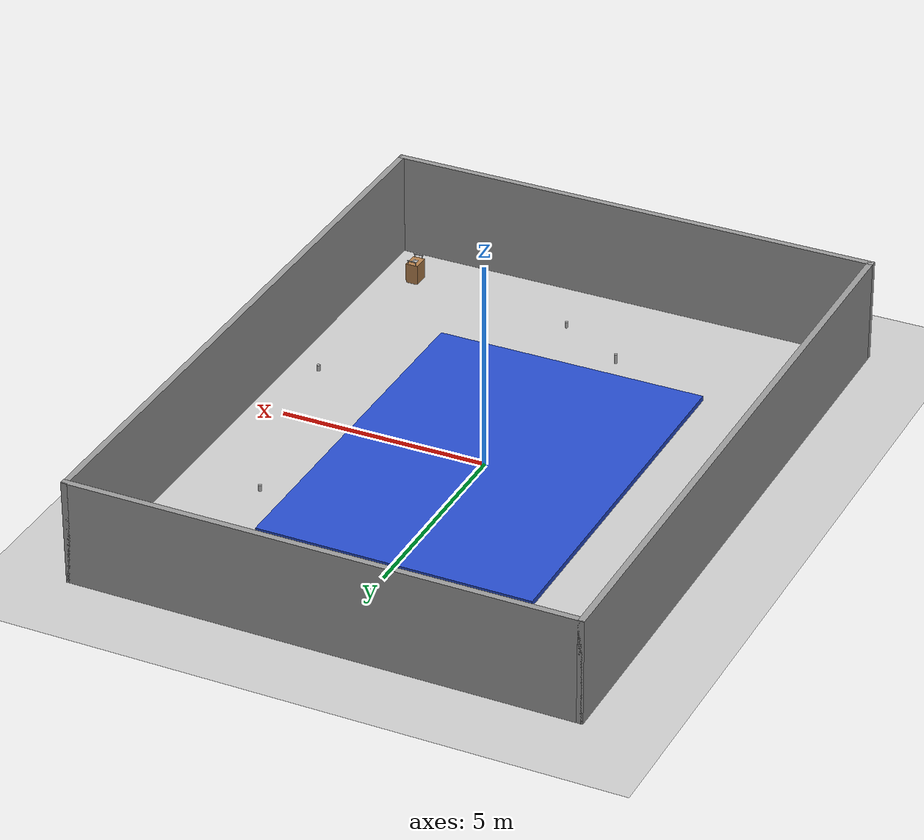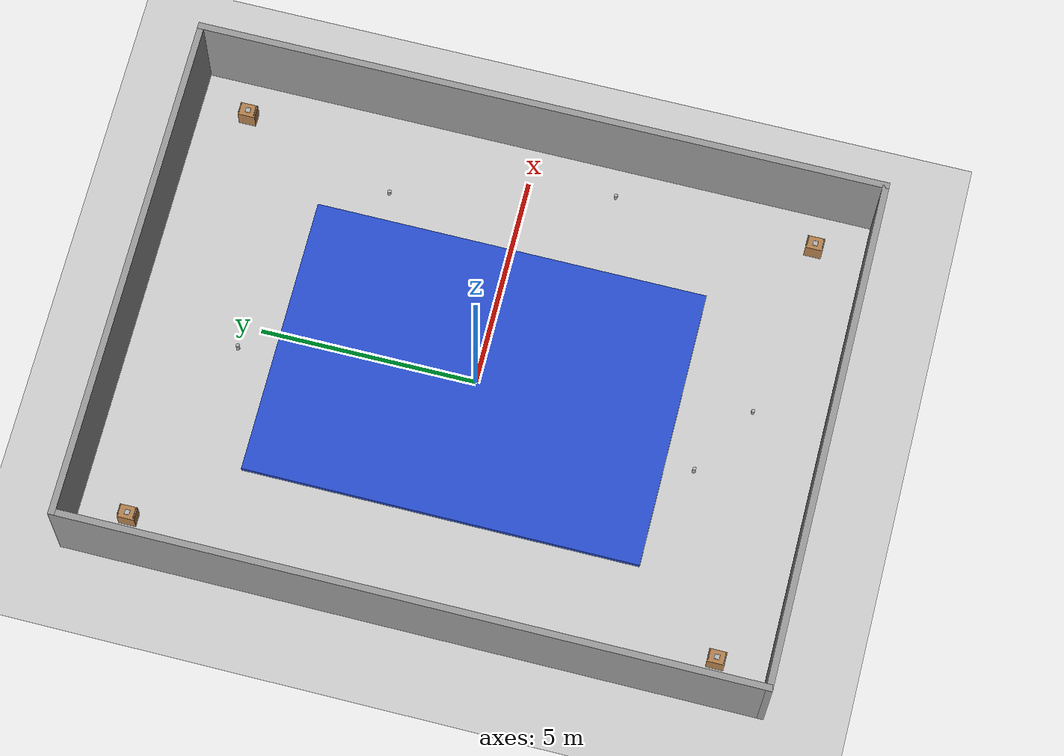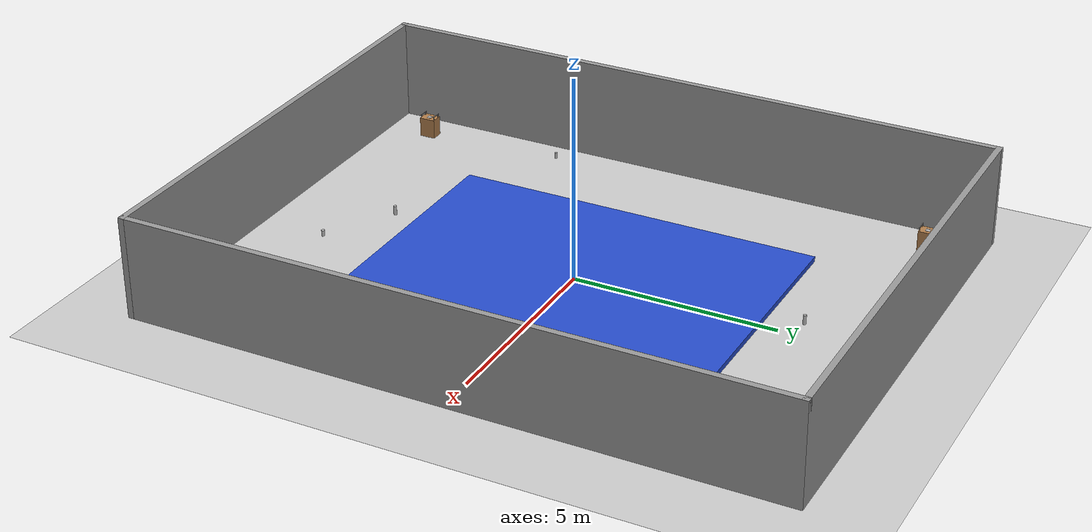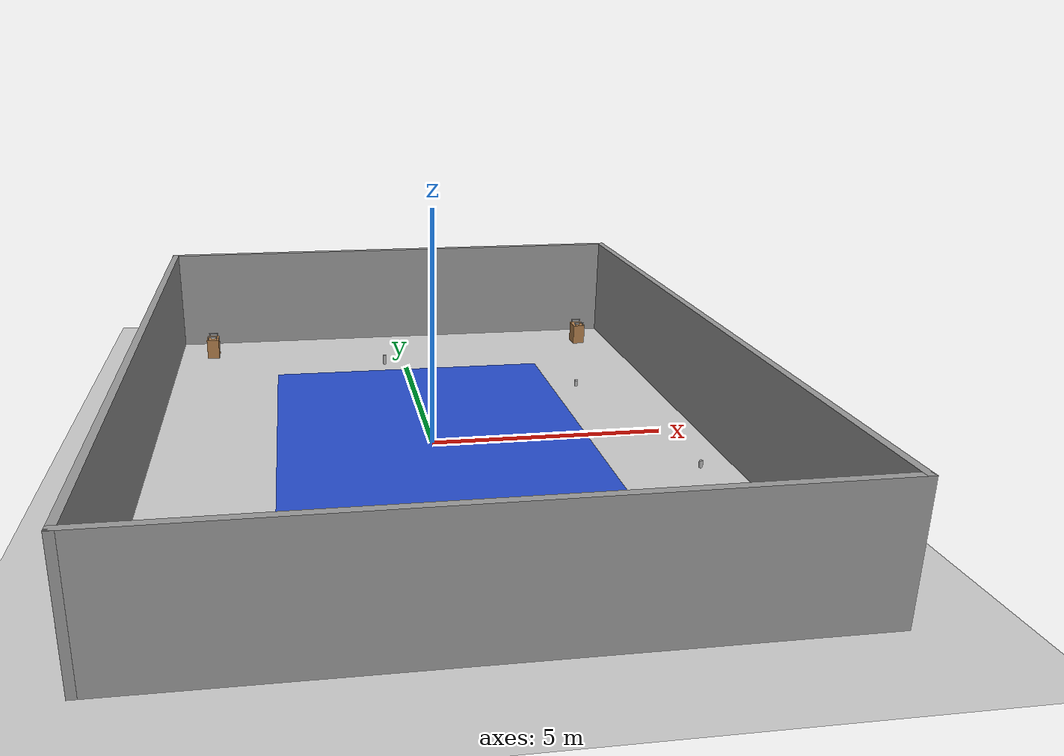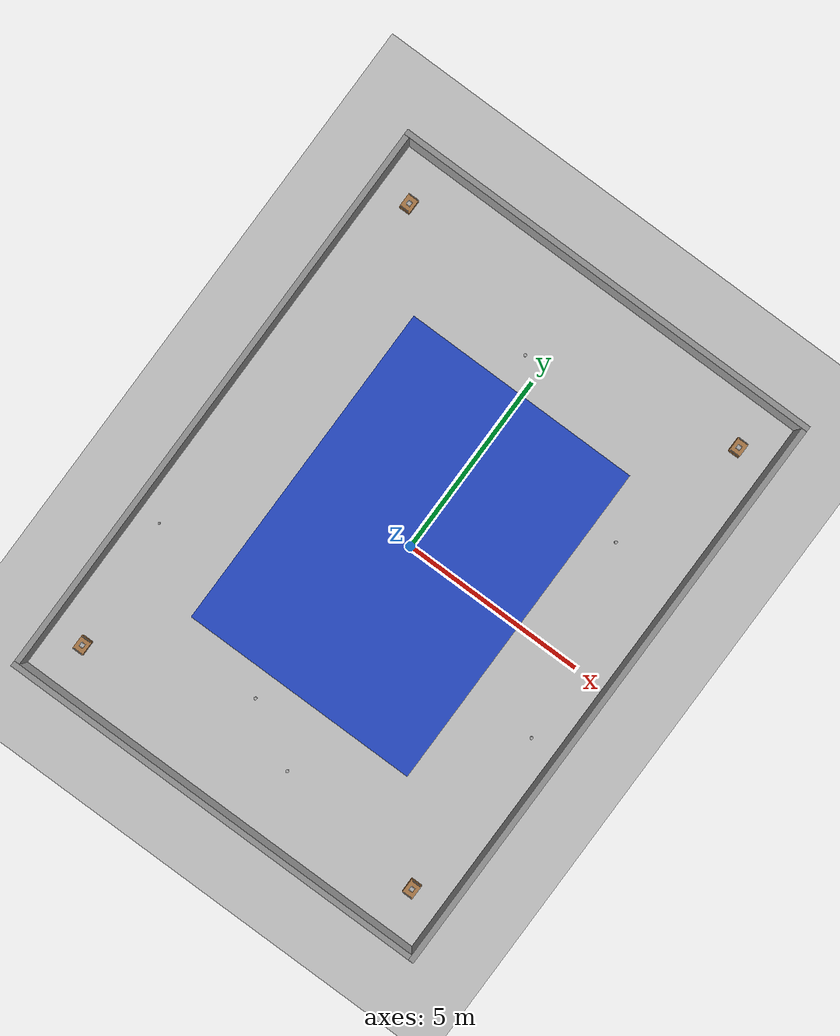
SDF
<sdf version="1.7">
 <world name="default">
  <plugin name="gazebo_ros_state" filename="libgazebo_ros_state.so">
   <ros><namespace>/gazebo</namespace></ros>
   <update_rate>10.0</update_rate>
  </plugin>
  <light name="sun" type="directional">
   <pose>0 0 10 0 -0 0</pose>
   <diffuse>0.8 0.8 0.8 1</diffuse>
   <specular>0.2 0.2 0.2 1</specular>
   <attenuation>
    <range>1000</range>
    <constant>0.9</constant>
    <linear>0.01</linear>
    <quadratic>0.001</quadratic>
   </attenuation>
   <direction>-0.5 0.1 -0.9</direction>
   <spot><inner_angle>0</inner_angle><outer_angle>0</outer_angle><falloff>0</falloff></spot>
  </light>
  <model name="ground_plane">
   <static>1</static>
   <link name="link">
    <collision name="collision">
     <geometry><plane><normal>0 0 1</normal><size>100 100</size></plane></geometry>
     <surface><friction><ode><mu>100</mu><mu2>50</mu2></ode></friction></surface>
    </collision>
    <visual name="visual">
     <cast_shadows>0</cast_shadows>
     <geometry><plane><normal>0 0 1</normal><size>100 100</size></plane></geometry>
     <material>
      <script><uri>file://media/materials/scripts/gazebo.material</uri><name>Gazebo/Grey</name></script>
     </material>
    </visual>
   </link>
  </model>
  <gravity>0 0 -9.8</gravity>
  <magnetic_field>6e-06 2.3e-05 -4.2e-05</magnetic_field>
  <atmosphere type="adiabatic"/>
  <physics type="ode">
   <max_step_size>0.001</max_step_size>
   <real_time_factor>1</real_time_factor>
   <real_time_update_rate>1000</real_time_update_rate>
  </physics>
  <scene><ambient>0.4 0.4 0.4 1</ambient><background>0.7 0.7 0.7 1</background><shadows>1</shadows></scene>
  <audio><device>default</device></audio>
  <spherical_coordinates>
   <surface_model>EARTH_WGS84</surface_model>
   <latitude_deg>0</latitude_deg>
   <longitude_deg>0</longitude_deg>
   <elevation>0</elevation>
   <heading_deg>0</heading_deg>
  </spherical_coordinates>
  <model name="pond">
   <link name="link">
    <inertial>
     <mass>1</mass>
     <inertia><ixx>0</ixx><ixy>0</ixy><ixz>0</ixz><iyy>0.166667</iyy><iyz>0</iyz><izz>0</izz></inertia>
    </inertial>
    <gravity>0</gravity>
    <visual name="visual">
     <geometry><box><size>6.57486 9.15662 0.999998</size></box></geometry>
     <material>
      <script><name>Gazebo/Blue</name><uri>file://media/materials/scripts/gazebo.material</uri></script>
      <shader type="pixel"><normal_map>__default__</normal_map></shader>
      <ambient>0 0 1 1</ambient>
      <diffuse>0 0 1 1</diffuse>
      <specular>0.01 0.01 0.01 1</specular>
      <emissive>0 0 0 1</emissive>
     </material>
    </visual>
    <collision name="collision">
     <geometry><box><size>6.70189 9.69168 0.999998</size></box></geometry>
     <surface>
      <friction>
       <ode><mu>1</mu><mu2>1</mu2><fdir1>0 0 0</fdir1><slip1>0</slip1><slip2>0</slip2></ode>
       <torsional>
        <coefficient>1</coefficient>
        <patch_radius>0</patch_radius>
        <surface_radius>0</surface_radius>
        <use_patch_radius>1</use_patch_radius>
        <ode><slip>0</slip></ode>
       </torsional>
      </friction>
      <bounce><restitution_coefficient>0</restitution_coefficient><threshold>1e+06</threshold></bounce>
      <contact>
       <collide_without_contact>0</collide_without_contact>
       <collide_without_contact_bitmask>1</collide_without_contact_bitmask>
       <collide_bitmask>1</collide_bitmask>
       <ode>
        <soft_cfm>0</soft_cfm>
        <soft_erp>0.2</soft_erp>
        <kp>1e+13</kp>
        <kd>1</kd>
        <max_vel>0.01</max_vel>
        <min_depth>0</min_depth>
       </ode>
       <bullet>
        <split_impulse>1</split_impulse>
        <split_impulse_penetration_threshold>-0.01</split_impulse_penetration_threshold>
        <soft_cfm>0</soft_cfm>
        <soft_erp>0.2</soft_erp>
        <kp>1e+13</kp>
        <kd>1</kd>
       </bullet>
      </contact>
     </surface>
    </collision>
   </link>
   <static>1</static>
   <pose>0 0 -0.387317 0 -0 0</pose>
  </model>
  <model name="pond_walls">
   <link name="Wall_19">
    <collision name="Wall_19_Collision">
     <geometry><box><size>12 0.15 2.5</size></box></geometry>
     <pose>0 0 1.25 0 -0 0</pose>
    </collision>
    <visual name="Wall_19_Visual">
     <pose>0 0 1.25 0 -0 0</pose>
     <geometry><box><size>12 0.15 2.5</size></box></geometry>
     <material>
      <script><uri>file://media/materials/scripts/gazebo.material</uri><name>Gazebo/Grey</name></script>
      <ambient>1 1 1 1</ambient>
     </material>
     <meta><layer>0</layer></meta>
    </visual>
    <pose>0 7.925 0 0 -0 0</pose>
   </link>
   <link name="Wall_22">
    <collision name="Wall_22_Collision">
     <geometry><box><size>16 0.15 2.5</size></box></geometry>
     <pose>0 0 1.25 0 -0 0</pose>
    </collision>
    <visual name="Wall_22_Visual">
     <pose>0 0 1.25 0 -0 0</pose>
     <geometry><box><size>16 0.15 2.5</size></box></geometry>
     <material>
      <script><uri>file://media/materials/scripts/gazebo.material</uri><name>Gazebo/Grey</name></script>
      <ambient>1 1 1 1</ambient>
     </material>
     <meta><layer>0</layer></meta>
    </visual>
    <pose>5.925 0 0 0 -0 -1.5708</pose>
   </link>
   <link name="Wall_24">
    <collision name="Wall_24_Collision">
     <geometry><box><size>12 0.15 2.5</size></box></geometry>
     <pose>0 0 1.25 0 -0 0</pose>
    </collision>
    <visual name="Wall_24_Visual">
     <pose>0 0 1.25 0 -0 0</pose>
     <geometry><box><size>12 0.15 2.5</size></box></geometry>
     <material>
      <script><uri>file://media/materials/scripts/gazebo.material</uri><name>Gazebo/Grey</name></script>
      <ambient>1 1 1 1</ambient>
     </material>
     <meta><layer>0</layer></meta>
    </visual>
    <pose>0 -7.925 0 0 -0 3.14159</pose>
   </link>
   <link name="Wall_28">
    <collision name="Wall_28_Collision">
     <geometry><box><size>16 0.15 2.5</size></box></geometry>
     <pose>0 0 1.25 0 -0 0</pose>
    </collision>
    <visual name="Wall_28_Visual">
     <pose>0 0 1.25 0 -0 0</pose>
     <geometry><box><size>16 0.15 2.5</size></box></geometry>
     <material>
      <script><uri>file://media/materials/scripts/gazebo.material</uri><name>Gazebo/Grey</name></script>
      <ambient>1 1 1 1</ambient>
     </material>
     <meta><layer>0</layer></meta>
    </visual>
    <pose>-5.925 0 0 0 -0 1.5708</pose>
   </link>
   <static>1</static>
  </model>
  <model name="pringles">
   <static>0</static>
   <link name="link">
    <inertial>
     <mass>0.25</mass>
     <inertia><ixx>0</ixx><ixy>0</ixy><ixz>0</ixz><iyy>0</iyy><iyz>0</iyz><izz>0</izz></inertia>
    </inertial>
    <collision name="collision">
     <geometry><cylinder><radius>0.04</radius><length>0.235</length></cylinder></geometry>
    </collision>
    <visual name="visual">
     <geometry><cylinder><radius>0.04</radius><length>0.235</length></cylinder></geometry>
     <material>
      <script>
       <uri>model://pringles/material/scripts</uri>
       <uri>model://pringles/material/textures</uri>
       <name>Custom/pringles</name>
      </script>
     </material>
    </visual>
    <velocity_decay><linear>0</linear><angular>0</angular></velocity_decay>
   </link>
   <pose>-0.529707 5.42434 0.117491 -1e-06 -0 -1e-06</pose>
  </model>
  <model name="cocacola">
   <static>0</static>
   <link name="link">
    <inertial>
     <mass>0.25</mass>
     <inertia><ixx>0</ixx><ixy>0</ixy><ixz>0</ixz><iyy>0</iyy><iyz>0</iyz><izz>0</izz></inertia>
    </inertial>
    <collision name="collision">
     <pose>0 0 0.075 -3.14159 -0 0</pose>
     <geometry><cylinder><radius>0.04</radius><length>0.15</length></cylinder></geometry>
    </collision>
    <visual name="visual">
     <pose>0 0 0.075 -3.14159 -0 0</pose>
     <geometry><cylinder><radius>0.04</radius><length>0.15</length></cylinder></geometry>
     <material>
      <script>
       <uri>model://cocacola/material/scripts</uri>
       <uri>model://cocacola/material/textures</uri>
       <name>Custom/cocacola</name>
      </script>
     </material>
    </visual>
    <velocity_decay><linear>0</linear><angular>0</angular></velocity_decay>
   </link>
   <pose>3.98087 3.06349 -6e-06 -4e-06 -0 -0</pose>
  </model>
  <model name="cocacola_0">
   <static>0</static>
   <link name="link">
    <inertial>
     <mass>0.25</mass>
     <inertia><ixx>0</ixx><ixy>0</ixy><ixz>0</ixz><iyy>0</iyy><iyz>0</iyz><izz>0</izz></inertia>
    </inertial>
    <collision name="collision">
     <pose>0 0 0.075 -3.14159 -0 0</pose>
     <geometry><cylinder><radius>0.04</radius><length>0.15</length></cylinder></geometry>
    </collision>
    <visual name="visual">
     <pose>0 0 0.075 -3.14159 -0 0</pose>
     <geometry><cylinder><radius>0.04</radius><length>0.15</length></cylinder></geometry>
     <material>
      <script>
       <uri>model://cocacola/material/scripts</uri>
       <uri>model://cocacola/material/textures</uri>
       <name>Custom/cocacola</name>
      </script>
     </material>
    </visual>
    <velocity_decay><linear>0</linear><angular>0</angular></velocity_decay>
   </link>
   <pose>5.16235 -2.00931 -9e-06 -5e-06 6e-06 0</pose>
  </model>
  <model name="pringles_0">
   <static>0</static>
   <link name="link">
    <inertial>
     <mass>0.25</mass>
     <inertia><ixx>0</ixx><ixy>0</ixy><ixz>0</ixz><iyy>0</iyy><iyz>0</iyz><izz>0</izz></inertia>
    </inertial>
    <collision name="collision">
     <geometry><cylinder><radius>0.04</radius><length>0.235</length></cylinder></geometry>
    </collision>
    <visual name="visual">
     <geometry><cylinder><radius>0.04</radius><length>0.235</length></cylinder></geometry>
     <material>
      <script>
       <uri>model://pringles/material/scripts</uri>
       <uri>model://pringles/material/textures</uri>
       <name>Custom/pringles</name>
      </script>
     </material>
    </visual>
    <velocity_decay><linear>0</linear><angular>0</angular></velocity_decay>
   </link>
   <pose>-0.835084 -5.24328 0.11749 -1e-06 -1.3e-05 -8e-06</pose>
  </model>
  <model name="coke_can_slim">
   <allow_auto_disable>0</allow_auto_disable>
   <static>0</static>
   <link name="link">
    <inertial>
     <mass>0.15</mass>
     <inertia><ixx>2079.98</ixx><ixy>0</ixy><ixz>0</ixz><iyy>2079.98</iyy><iyz>0</iyz><izz>419.21</izz></inertia>
    </inertial>
    <collision name="collision">
     <geometry><cylinder><radius>0.029</radius><length>0.15</length></cylinder></geometry>
    </collision>
    <visual name="visual">
     <geometry><cylinder><radius>0.029</radius><length>0.15</length></cylinder></geometry>
     <material>
      <script>
       <uri>model://coke_can_slim/material/scripts</uri>
       <uri>model://coke_can_slim/material/textures</uri>
       <name>Custom/coke_can_slim</name>
      </script>
     </material>
    </visual>
    <velocity_decay><linear>0</linear><angular>0</angular></velocity_decay>
   </link>
   <pose>-5.28087 -3.20219 0.07499 9e-06 3.6e-05 0</pose>
  </model>
  <model name="sprite">
   <static>0</static>
   <link name="link">
    <inertial>
     <mass>0.25</mass>
     <inertia><ixx>0</ixx><ixy>0</ixy><ixz>0</ixz><iyy>0</iyy><iyz>0</iyz><izz>0</izz></inertia>
    </inertial>
    <collision name="collision">
     <pose>0 0 0.075 -3.14159 -0 0</pose>
     <geometry><cylinder><radius>0.04</radius><length>0.15</length></cylinder></geometry>
    </collision>
    <visual name="visual">
     <pose>0 0 0.075 -3.14159 -0 0</pose>
     <geometry><cylinder><radius>0.04</radius><length>0.15</length></cylinder></geometry>
     <material>
      <script>
       <uri>model://sprite/material/scripts</uri>
       <uri>model://sprite/material/textures</uri>
       <name>Custom/sprite</name>
      </script>
     </material>
    </visual>
    <velocity_decay><linear>0</linear><angular>0</angular></velocity_decay>
   </link>
   <pose>0.845287 -6.21473 -9e-06 -1e-06 5e-06 0</pose>
  </model>
  <model name="box_with_handles">
   <static>1</static>
   <link name="box_with_handles">
    <inertial>
     <pose>0 0 0.2 0 -0 0</pose>
     <inertia><ixx>1</ixx><ixy>0</ixy><ixz>0</ixz><iyy>1</iyy><iyz>0</iyz><izz>1</izz></inertia>
     <mass>2</mass>
    </inertial>
    <collision name="box">
     <pose>0 0 0.25 0 -0 0</pose>
     <geometry><box><size>0.3 0.4 0.5</size></box></geometry>
    </collision>
    <visual name="visual1">
     <pose>0 0 0.25 0 -0 0</pose>
     <geometry><box><size>0.3 0.4 0.5</size></box></geometry>
     <material>
      <script><uri>file://media/materials/scripts/gazebo.material</uri><name>Gazebo/Wood</name></script>
     </material>
    </visual>
    <collision name="handle_left_1">
     <pose>0.1 0.18 0.54 0 -0 0</pose>
     <geometry><cylinder><radius>0.01</radius><length>0.08</length></cylinder></geometry>
    </collision>
    <visual name="handle_left_1">
     <pose>0.1 0.18 0.54 0 -0 0</pose>
     <geometry><cylinder><radius>0.01</radius><length>0.08</length></cylinder></geometry>
     <material>
      <script><uri>file://media/materials/scripts/gazebo.material</uri><name>Gazebo/Grey</name></script>
     </material>
    </visual>
    <collision name="handle_left_2">
     <pose>-0.1 0.18 0.54 0 -0 0</pose>
     <geometry><cylinder><radius>0.01</radius><length>0.08</length></cylinder></geometry>
    </collision>
    <visual name="handle_left_2">
     <pose>-0.1 0.18 0.54 0 -0 0</pose>
     <geometry><cylinder><radius>0.01</radius><length>0.08</length></cylinder></geometry>
     <material>
      <script><uri>file://media/materials/scripts/gazebo.material</uri><name>Gazebo/Grey</name></script>
     </material>
    </visual>
    <collision name="handle_left_3">
     <pose>0 0.18 0.58 0 1.57 0</pose>
     <geometry><cylinder><radius>0.01</radius><length>0.25</length></cylinder></geometry>
    </collision>
    <visual name="handle_left_3">
     <pose>0 0.18 0.58 0 1.57 0</pose>
     <geometry><cylinder><radius>0.01</radius><length>0.25</length></cylinder></geometry>
     <material>
      <script><uri>file://media/materials/scripts/gazebo.material</uri><name>Gazebo/Grey</name></script>
     </material>
    </visual>
    <collision name="handle_left_1">
     <pose>0.1 -0.18 0.54 0 -0 0</pose>
     <geometry><cylinder><radius>0.01</radius><length>0.08</length></cylinder></geometry>
    </collision>
    <visual name="handle_right_1">
     <pose>0.1 -0.18 0.54 0 -0 0</pose>
     <geometry><cylinder><radius>0.01</radius><length>0.08</length></cylinder></geometry>
     <material>
      <script><uri>file://media/materials/scripts/gazebo.material</uri><name>Gazebo/Grey</name></script>
     </material>
    </visual>
    <collision name="handle_right_2">
     <pose>-0.1 -0.18 0.54 0 -0 0</pose>
     <geometry><cylinder><radius>0.01</radius><length>0.08</length></cylinder></geometry>
    </collision>
    <visual name="handle_right_2">
     <pose>-0.1 -0.18 0.54 0 -0 0</pose>
     <geometry><cylinder><radius>0.01</radius><length>0.08</length></cylinder></geometry>
     <material>
      <script><uri>file://media/materials/scripts/gazebo.material</uri><name>Gazebo/Grey</name></script>
     </material>
    </visual>
    <collision name="handle_right_3">
     <pose>0 -0.18 0.58 0 1.57 0</pose>
     <geometry><cylinder><radius>0.01</radius><length>0.25</length></cylinder></geometry>
    </collision>
    <visual name="handle_right_3">
     <pose>0 -0.18 0.58 0 1.57 0</pose>
     <geometry><cylinder><radius>0.01</radius><length>0.25</length></cylinder></geometry>
     <material>
      <script><uri>file://media/materials/scripts/gazebo.material</uri><name>Gazebo/Grey</name></script>
     </material>
    </visual>
    <visual name="visual2">
     <pose>0 0 0.5005 0 -0 0</pose>
     <geometry><box><size>0.12 0.12 0.001</size></box></geometry>
     <material>
      <script><uri>file://media/materials/scripts/gazebo.material</uri><name>Gazebo/White</name></script>
     </material>
    </visual>
    <visual name="visual3">
     <pose>0 0 0.501 0 -0 1.57</pose>
     <geometry><box><size>0.105 0.105 0.001</size></box></geometry>
     <material>
      <script>
       <uri>model://box_with_handles/material/scripts</uri>
       <uri>model://box_with_handles/material/textures</uri>
       <name>Aruco/aruco_marker_original_582</name>
      </script>
     </material>
    </visual>
    <velocity_decay><linear>0</linear><angular>0</angular></velocity_decay>
   </link>
   <pose>-5 6.7 0 0 -0 0</pose>
  </model>
  <model name="box_with_handles_clone">
   <static>1</static>
   <link name="box_with_handles">
    <inertial>
     <pose>0 0 0.2 0 -0 0</pose>
     <inertia><ixx>1</ixx><ixy>0</ixy><ixz>0</ixz><iyy>1</iyy><iyz>0</iyz><izz>1</izz></inertia>
     <mass>2</mass>
    </inertial>
    <collision name="box">
     <pose>0 0 0.25 0 -0 0</pose>
     <geometry><box><size>0.3 0.4 0.5</size></box></geometry>
    </collision>
    <visual name="visual1">
     <pose>0 0 0.25 0 -0 0</pose>
     <geometry><box><size>0.3 0.4 0.5</size></box></geometry>
     <material>
      <script><uri>file://media/materials/scripts/gazebo.material</uri><name>Gazebo/Wood</name></script>
     </material>
    </visual>
    <collision name="handle_left_1">
     <pose>0.1 0.18 0.54 0 -0 0</pose>
     <geometry><cylinder><radius>0.01</radius><length>0.08</length></cylinder></geometry>
    </collision>
    <visual name="handle_left_1">
     <pose>0.1 0.18 0.54 0 -0 0</pose>
     <geometry><cylinder><radius>0.01</radius><length>0.08</length></cylinder></geometry>
     <material>
      <script><uri>file://media/materials/scripts/gazebo.material</uri><name>Gazebo/Grey</name></script>
     </material>
    </visual>
    <collision name="handle_left_2">
     <pose>-0.1 0.18 0.54 0 -0 0</pose>
     <geometry><cylinder><radius>0.01</radius><length>0.08</length></cylinder></geometry>
    </collision>
    <visual name="handle_left_2">
     <pose>-0.1 0.18 0.54 0 -0 0</pose>
     <geometry><cylinder><radius>0.01</radius><length>0.08</length></cylinder></geometry>
     <material>
      <script><uri>file://media/materials/scripts/gazebo.material</uri><name>Gazebo/Grey</name></script>
     </material>
    </visual>
    <collision name="handle_left_3">
     <pose>0 0.18 0.58 0 1.57 0</pose>
     <geometry><cylinder><radius>0.01</radius><length>0.25</length></cylinder></geometry>
    </collision>
    <visual name="handle_left_3">
     <pose>0 0.18 0.58 0 1.57 0</pose>
     <geometry><cylinder><radius>0.01</radius><length>0.25</length></cylinder></geometry>
     <material>
      <script><uri>file://media/materials/scripts/gazebo.material</uri><name>Gazebo/Grey</name></script>
     </material>
    </visual>
    <collision name="handle_left_1">
     <pose>0.1 -0.18 0.54 0 -0 0</pose>
     <geometry><cylinder><radius>0.01</radius><length>0.08</length></cylinder></geometry>
    </collision>
    <visual name="handle_right_1">
     <pose>0.1 -0.18 0.54 0 -0 0</pose>
     <geometry><cylinder><radius>0.01</radius><length>0.08</length></cylinder></geometry>
     <material>
      <script><uri>file://media/materials/scripts/gazebo.material</uri><name>Gazebo/Grey</name></script>
     </material>
    </visual>
    <collision name="handle_right_2">
     <pose>-0.1 -0.18 0.54 0 -0 0</pose>
     <geometry><cylinder><radius>0.01</radius><length>0.08</length></cylinder></geometry>
    </collision>
    <visual name="handle_right_2">
     <pose>-0.1 -0.18 0.54 0 -0 0</pose>
     <geometry><cylinder><radius>0.01</radius><length>0.08</length></cylinder></geometry>
     <material>
      <script><uri>file://media/materials/scripts/gazebo.material</uri><name>Gazebo/Grey</name></script>
     </material>
    </visual>
    <collision name="handle_right_3">
     <pose>0 -0.18 0.58 0 1.57 0</pose>
     <geometry><cylinder><radius>0.01</radius><length>0.25</length></cylinder></geometry>
    </collision>
    <visual name="handle_right_3">
     <pose>0 -0.18 0.58 0 1.57 0</pose>
     <geometry><cylinder><radius>0.01</radius><length>0.25</length></cylinder></geometry>
     <material>
      <script><uri>file://media/materials/scripts/gazebo.material</uri><name>Gazebo/Grey</name></script>
     </material>
    </visual>
    <visual name="visual2">
     <pose>0 0 0.5005 0 -0 0</pose>
     <geometry><box><size>0.12 0.12 0.001</size></box></geometry>
     <material>
      <script><uri>file://media/materials/scripts/gazebo.material</uri><name>Gazebo/White</name></script>
     </material>
    </visual>
    <visual name="visual3">
     <pose>0 0 0.501 0 -0 1.57</pose>
     <geometry><box><size>0.105 0.105 0.001</size></box></geometry>
     <material>
      <script>
       <uri>model://box_with_handles/material/scripts</uri>
       <uri>model://box_with_handles/material/textures</uri>
       <name>Aruco/aruco_marker_original_582</name>
      </script>
     </material>
    </visual>
    <velocity_decay><linear>0</linear><angular>0</angular></velocity_decay>
   </link>
   <pose>5 6.7 0 0 -0 0</pose>
  </model>
  <model name="box_with_handles_clone_clone">
   <static>1</static>
   <link name="box_with_handles">
    <inertial>
     <pose>0 0 0.2 0 -0 0</pose>
     <inertia><ixx>1</ixx><ixy>0</ixy><ixz>0</ixz><iyy>1</iyy><iyz>0</iyz><izz>1</izz></inertia>
     <mass>2</mass>
    </inertial>
    <collision name="box">
     <pose>0 0 0.25 0 -0 0</pose>
     <geometry><box><size>0.3 0.4 0.5</size></box></geometry>
    </collision>
    <visual name="visual1">
     <pose>0 0 0.25 0 -0 0</pose>
     <geometry><box><size>0.3 0.4 0.5</size></box></geometry>
     <material>
      <script><uri>file://media/materials/scripts/gazebo.material</uri><name>Gazebo/Wood</name></script>
     </material>
    </visual>
    <collision name="handle_left_1">
     <pose>0.1 0.18 0.54 0 -0 0</pose>
     <geometry><cylinder><radius>0.01</radius><length>0.08</length></cylinder></geometry>
    </collision>
    <visual name="handle_left_1">
     <pose>0.1 0.18 0.54 0 -0 0</pose>
     <geometry><cylinder><radius>0.01</radius><length>0.08</length></cylinder></geometry>
     <material>
      <script><uri>file://media/materials/scripts/gazebo.material</uri><name>Gazebo/Grey</name></script>
     </material>
    </visual>
    <collision name="handle_left_2">
     <pose>-0.1 0.18 0.54 0 -0 0</pose>
     <geometry><cylinder><radius>0.01</radius><length>0.08</length></cylinder></geometry>
    </collision>
    <visual name="handle_left_2">
     <pose>-0.1 0.18 0.54 0 -0 0</pose>
     <geometry><cylinder><radius>0.01</radius><length>0.08</length></cylinder></geometry>
     <material>
      <script><uri>file://media/materials/scripts/gazebo.material</uri><name>Gazebo/Grey</name></script>
     </material>
    </visual>
    <collision name="handle_left_3">
     <pose>0 0.18 0.58 0 1.57 0</pose>
     <geometry><cylinder><radius>0.01</radius><length>0.25</length></cylinder></geometry>
    </collision>
    <visual name="handle_left_3">
     <pose>0 0.18 0.58 0 1.57 0</pose>
     <geometry><cylinder><radius>0.01</radius><length>0.25</length></cylinder></geometry>
     <material>
      <script><uri>file://media/materials/scripts/gazebo.material</uri><name>Gazebo/Grey</name></script>
     </material>
    </visual>
    <collision name="handle_left_1">
     <pose>0.1 -0.18 0.54 0 -0 0</pose>
     <geometry><cylinder><radius>0.01</radius><length>0.08</length></cylinder></geometry>
    </collision>
    <visual name="handle_right_1">
     <pose>0.1 -0.18 0.54 0 -0 0</pose>
     <geometry><cylinder><radius>0.01</radius><length>0.08</length></cylinder></geometry>
     <material>
      <script><uri>file://media/materials/scripts/gazebo.material</uri><name>Gazebo/Grey</name></script>
     </material>
    </visual>
    <collision name="handle_right_2">
     <pose>-0.1 -0.18 0.54 0 -0 0</pose>
     <geometry><cylinder><radius>0.01</radius><length>0.08</length></cylinder></geometry>
    </collision>
    <visual name="handle_right_2">
     <pose>-0.1 -0.18 0.54 0 -0 0</pose>
     <geometry><cylinder><radius>0.01</radius><length>0.08</length></cylinder></geometry>
     <material>
      <script><uri>file://media/materials/scripts/gazebo.material</uri><name>Gazebo/Grey</name></script>
     </material>
    </visual>
    <collision name="handle_right_3">
     <pose>0 -0.18 0.58 0 1.57 0</pose>
     <geometry><cylinder><radius>0.01</radius><length>0.25</length></cylinder></geometry>
    </collision>
    <visual name="handle_right_3">
     <pose>0 -0.18 0.58 0 1.57 0</pose>
     <geometry><cylinder><radius>0.01</radius><length>0.25</length></cylinder></geometry>
     <material>
      <script><uri>file://media/materials/scripts/gazebo.material</uri><name>Gazebo/Grey</name></script>
     </material>
    </visual>
    <visual name="visual2">
     <pose>0 0 0.5005 0 -0 0</pose>
     <geometry><box><size>0.12 0.12 0.001</size></box></geometry>
     <material>
      <script><uri>file://media/materials/scripts/gazebo.material</uri><name>Gazebo/White</name></script>
     </material>
    </visual>
    <visual name="visual3">
     <pose>0 0 0.501 0 -0 1.57</pose>
     <geometry><box><size>0.105 0.105 0.001</size></box></geometry>
     <material>
      <script>
       <uri>model://box_with_handles/material/scripts</uri>
       <uri>model://box_with_handles/material/textures</uri>
       <name>Aruco/aruco_marker_original_582</name>
      </script>
     </material>
    </visual>
    <velocity_decay><linear>0</linear><angular>0</angular></velocity_decay>
   </link>
   <pose>5 -6.7 0 0 -0 0</pose>
  </model>
  <model name="box_with_handles_clone_clone_clone">
   <static>1</static>
   <link name="box_with_handles">
    <inertial>
     <pose>0 0 0.2 0 -0 0</pose>
     <inertia><ixx>1</ixx><ixy>0</ixy><ixz>0</ixz><iyy>1</iyy><iyz>0</iyz><izz>1</izz></inertia>
     <mass>2</mass>
    </inertial>
    <collision name="box">
     <pose>0 0 0.25 0 -0 0</pose>
     <geometry><box><size>0.3 0.4 0.5</size></box></geometry>
    </collision>
    <visual name="visual1">
     <pose>0 0 0.25 0 -0 0</pose>
     <geometry><box><size>0.3 0.4 0.5</size></box></geometry>
     <material>
      <script><uri>file://media/materials/scripts/gazebo.material</uri><name>Gazebo/Wood</name></script>
     </material>
    </visual>
    <collision name="handle_left_1">
     <pose>0.1 0.18 0.54 0 -0 0</pose>
     <geometry><cylinder><radius>0.01</radius><length>0.08</length></cylinder></geometry>
    </collision>
    <visual name="handle_left_1">
     <pose>0.1 0.18 0.54 0 -0 0</pose>
     <geometry><cylinder><radius>0.01</radius><length>0.08</length></cylinder></geometry>
     <material>
      <script><uri>file://media/materials/scripts/gazebo.material</uri><name>Gazebo/Grey</name></script>
     </material>
    </visual>
    <collision name="handle_left_2">
     <pose>-0.1 0.18 0.54 0 -0 0</pose>
     <geometry><cylinder><radius>0.01</radius><length>0.08</length></cylinder></geometry>
    </collision>
    <visual name="handle_left_2">
     <pose>-0.1 0.18 0.54 0 -0 0</pose>
     <geometry><cylinder><radius>0.01</radius><length>0.08</length></cylinder></geometry>
     <material>
      <script><uri>file://media/materials/scripts/gazebo.material</uri><name>Gazebo/Grey</name></script>
     </material>
    </visual>
    <collision name="handle_left_3">
     <pose>0 0.18 0.58 0 1.57 0</pose>
     <geometry><cylinder><radius>0.01</radius><length>0.25</length></cylinder></geometry>
    </collision>
    <visual name="handle_left_3">
     <pose>0 0.18 0.58 0 1.57 0</pose>
     <geometry><cylinder><radius>0.01</radius><length>0.25</length></cylinder></geometry>
     <material>
      <script><uri>file://media/materials/scripts/gazebo.material</uri><name>Gazebo/Grey</name></script>
     </material>
    </visual>
    <collision name="handle_left_1">
     <pose>0.1 -0.18 0.54 0 -0 0</pose>
     <geometry><cylinder><radius>0.01</radius><length>0.08</length></cylinder></geometry>
    </collision>
    <visual name="handle_right_1">
     <pose>0.1 -0.18 0.54 0 -0 0</pose>
     <geometry><cylinder><radius>0.01</radius><length>0.08</length></cylinder></geometry>
     <material>
      <script><uri>file://media/materials/scripts/gazebo.material</uri><name>Gazebo/Grey</name></script>
     </material>
    </visual>
    <collision name="handle_right_2">
     <pose>-0.1 -0.18 0.54 0 -0 0</pose>
     <geometry><cylinder><radius>0.01</radius><length>0.08</length></cylinder></geometry>
    </collision>
    <visual name="handle_right_2">
     <pose>-0.1 -0.18 0.54 0 -0 0</pose>
     <geometry><cylinder><radius>0.01</radius><length>0.08</length></cylinder></geometry>
     <material>
      <script><uri>file://media/materials/scripts/gazebo.material</uri><name>Gazebo/Grey</name></script>
     </material>
    </visual>
    <collision name="handle_right_3">
     <pose>0 -0.18 0.58 0 1.57 0</pose>
     <geometry><cylinder><radius>0.01</radius><length>0.25</length></cylinder></geometry>
    </collision>
    <visual name="handle_right_3">
     <pose>0 -0.18 0.58 0 1.57 0</pose>
     <geometry><cylinder><radius>0.01</radius><length>0.25</length></cylinder></geometry>
     <material>
      <script><uri>file://media/materials/scripts/gazebo.material</uri><name>Gazebo/Grey</name></script>
     </material>
    </visual>
    <visual name="visual2">
     <pose>0 0 0.5005 0 -0 0</pose>
     <geometry><box><size>0.12 0.12 0.001</size></box></geometry>
     <material>
      <script><uri>file://media/materials/scripts/gazebo.material</uri><name>Gazebo/White</name></script>
     </material>
    </visual>
    <visual name="visual3">
     <pose>0 0 0.501 0 -0 1.57</pose>
     <geometry><box><size>0.105 0.105 0.001</size></box></geometry>
     <material>
      <script>
       <uri>model://box_with_handles/material/scripts</uri>
       <uri>model://box_with_handles/material/textures</uri>
       <name>Aruco/aruco_marker_original_582</name>
      </script>
     </material>
    </visual>
    <velocity_decay><linear>0</linear><angular>0</angular></velocity_decay>
   </link>
   <pose>-5 -6.7 0 0 -0 0</pose>
  </model>
 </world>
</sdf>
